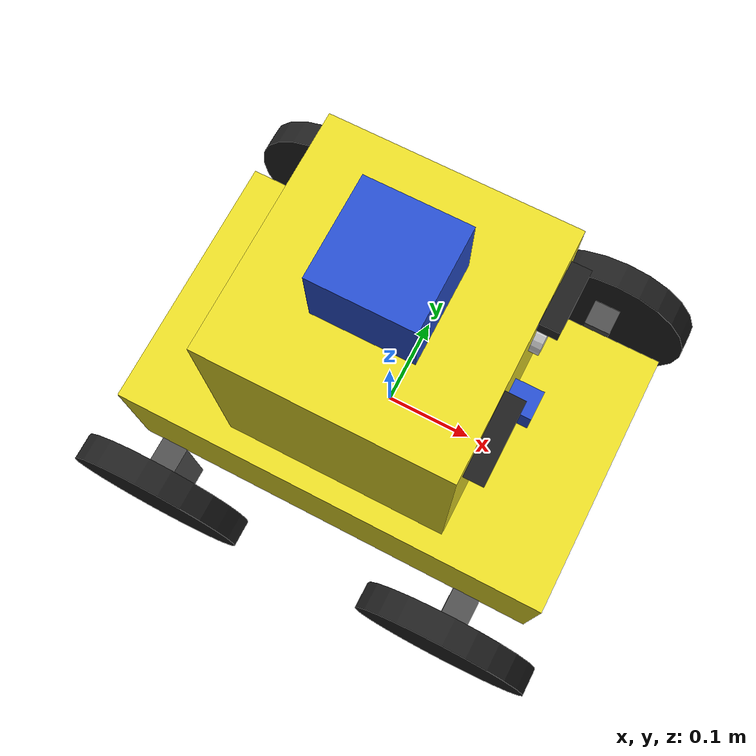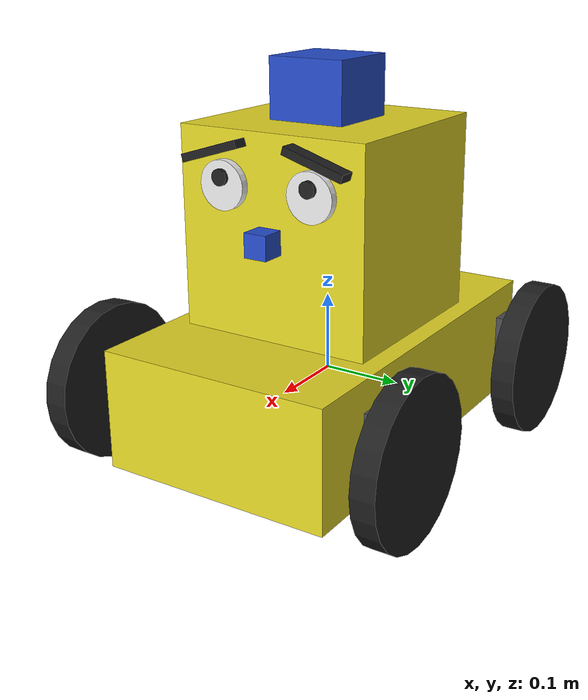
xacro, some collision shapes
<?xml version='1.0'?>

<robot name="my_robot" xmlns:xacro="http://www.ros.org/wiki/xacro">
    <xacro:include filename="$(find my_robot)/urdf/my_robot.gazebo"/>
    <link name="robot_footprint"/>

    <joint name="robot_footprint_joint" type="fixed">
        <origin xyz="0 0 0" rpy="0 0 0" />
        <parent link="robot_footprint"/>
        <child link="chassis"/>
    </joint>

    <link name="chassis">
        <pose> 0 0 0 0 0 0</pose>
        <inertial>
            <mass value="8.0"/>
            <origin xyz="0 0 0" rpy="0 0 0"/>
            <inertia ixx="0.3"
                     iyy="0.3"
                     izz="0.1"
                     ixy="0.0" ixz="0.0" iyz="0.0"
                     />
         </inertial>

        <collision name="chassis_collision">
            <origin xyz="0 0 0" rpy="0 0 0"/>
            <geometry>
                <box size='0.5 0.3 0.15'/>
            </geometry>
        </collision>

        <visual name="chassis_visual">
            <origin xyz="0 0 0" rpy="0 0 0"/>
            <geometry>
                <box size='0.5 0.3 0.15'/>
            </geometry>
        </visual>
    </link>

    <gazebo reference="chassis">
        <material>Gazebo/Yellow</material>
    </gazebo>

    <!-- Head
    \\\\\\\\\\\\\\\\\\\\\\\\\\\\\\\\\\\\\\\\\\\\\\\\\-->

    <link name="head">
        <pose> 0 0 0 0 0 0</pose>
        <inertial>
            <mass value="0.2"/>
            <origin xyz="0 0 0" rpy="0 0 0"/>
            <inertia ixx="0.1"
                     iyy="0.1"
                     izz="0.1"
                     ixy="0.0" ixz="0.0" iyz="0.0"
                     />
         </inertial>

        <collision >
            <origin xyz="0 0 0" rpy="0 0 0"/>
            <geometry>
                <box size='0.3 0.25 0.25'/>
            </geometry>
        </collision>

        <visual >
            <origin xyz="0 0 0" rpy="0 0 0"/>
            <geometry>
                <box size='0.25 0.25 0.25'/>
            </geometry>
        </visual>
    </link>

    <gazebo reference="head">
        <material>Gazebo/Yellow</material>
    </gazebo>

    <joint name="head_joint" type="fixed">
        <origin xyz='0 0 0.2' rpy="0 0 0"/>
        <child link="head"/>
        <parent link="chassis"/>
        <axis xyz="0 0 1" rpy="0 0 0"/>
        <limit effort="1000" velocity="1000"/>
        <dynamics damping="0.1" friction="0.1"/>
    </joint>

    <!-- Eyes
    \\\\\\\\\\\\\\\\\\\\\\\\\\\\\\\\\\\\\\\\\\\\\\\\\-->
    <link name="left_eye">
        <collision>
            <origin xyz="0 0 0" rpy="0 1.5707 0"/>
            <geometry>
                <cylinder radius="0.03" length="0.01"/>
            </geometry>
        </collision>

        <inertial>
            <mass value="0.1"/>
            <origin xyz="0 0 0" rpy="0 1.5707 0"/>
            <inertia
                ixx='0.1'
                iyy='0.1'
                izz='0.1'
                ixy="0" ixz="0" iyz="0"
                />
        </inertial>

        <visual>
            <origin xyz="0 0 0" rpy="0 1.5707 0"/>
            <geometry>
                <cylinder radius="0.03" length="0.01"/>
            </geometry>
        </visual>
    </link>

    <link name="right_eye">
        <collision>
            <origin xyz="0 0 0" rpy="0 1.5707 0"/>
            <geometry>
                <cylinder radius="0.03" length="0.01"/>
            </geometry>
        </collision>

        <inertial>
            <mass value="0.1"/>
            <origin xyz="0 0 0" rpy="0 1.5707 0"/>
            <inertia
                ixx='0.1'
                iyy='0.1'
                izz='0.1'
                ixy="0" ixz="0" iyz="0"
                />
        </inertial>

        <visual>
            <origin xyz="0 0 0" rpy="0 1.5707 0"/>
            <geometry>
                <cylinder radius="0.03" length="0.01"/>
            </geometry>
        </visual>
    </link>

    <gazebo reference="left_eye">
        <material>Gazebo/White</material>
    </gazebo>
    <gazebo reference="right_eye">
        <material>Gazebo/White</material>
    </gazebo>

    <joint name="left_eye_joint" type="fixed">
        <origin xyz='0.13 0.06 0.06' rpy="0 0 0"/>
        <child link="left_eye"/>
        <parent link="head"/>
        <axis xyz="0 0 1" rpy="0 0 0"/>
        <limit effort="1000" velocity="1000"/>
        <dynamics damping="0.1" friction="0.1"/>
    </joint>

    <joint name="right_eye_joint" type="fixed">
        <origin xyz='0.13 -0.06 0.06' rpy="0 0 0"/>
        <child link="right_eye"/>
        <parent link="head"/>
        <axis xyz="0 0 1" rpy="0 0 0"/>
        <limit effort="1000" velocity="1000"/>
        <dynamics damping="0.1" friction="0.1"/>
    </joint>

    <!-- Pupils
    \\\\\\\\\\\\\\\\\\\\\\\\\\\\\\\\\\\\\\\\\\\\\\\\\-->
    <link name="left_pupil">
        <collision>
            <origin xyz="0 0 0" rpy="0 1.5707 0"/>
            <geometry>
                <cylinder radius="0.01" length="0.005"/>
            </geometry>
        </collision>

        <inertial>
            <mass value="0.1"/>
            <origin xyz="0 0 0" rpy="0 1.5707 0"/>
            <inertia
                ixx='0.1'
                iyy='0.1'
                izz='0.1'
                ixy="0" ixz="0" iyz="0"
                />
        </inertial>

        <visual>
            <origin xyz="0 0 0" rpy="0 1.5707 0"/>
            <geometry>
                <cylinder radius="0.01" length="0.005"/>
            </geometry>
        </visual>
    </link>

    <link name="right_pupil">
        <collision>
            <origin xyz="0 0 0" rpy="0 1.5707 0"/>
            <geometry>
                <cylinder radius="0.01" length="0.005"/>
            </geometry>
        </collision>

        <inertial>
            <mass value="0.1"/>
            <origin xyz="0 0 0" rpy="0 1.5707 0"/>
            <inertia
                ixx='0.1'
                iyy='0.1'
                izz='0.1'
                ixy="0" ixz="0" iyz="0"
                />
        </inertial>

        <visual>
            <origin xyz="0 0 0" rpy="0 1.5707 0"/>
            <geometry>
                <cylinder radius="0.01" length="0.005"/>
            </geometry>
        </visual>
    </link>

    <gazebo reference="left_pupil">
        <material>Gazebo/Black</material>
    </gazebo>

    <gazebo reference="right_pupil">
        <material>Gazebo/Black</material>
    </gazebo>

    <joint name="left_pupil_joint" type="fixed">
        <origin xyz='0.0075 0 0.01' rpy="0 0 0"/>
        <child link="left_pupil"/>
        <parent link="left_eye"/>
        <axis xyz="0 0 1" rpy="0 0 0"/>
        <limit effort="1000" velocity="1000"/>
        <dynamics damping="0.1" friction="0.1"/>
    </joint>

    <joint name="right_pupil_joint" type="fixed">
        <origin xyz='0.0075 0 0.01' rpy="0 0 0"/>
        <child link="right_pupil"/>
        <parent link="right_eye"/>
        <axis xyz="0 0 1" rpy="0 0 0"/>
        <limit effort="1000" velocity="1000"/>
        <dynamics damping="0.1" friction="0.1"/>
    </joint>

    <!-- Eyebrows
    \\\\\\\\\\\\\\\\\\\\\\\\\\\\\\\\\\\\\\\\\\\\\\\\\-->
    <link name="left_eyebrow">
        <pose> 0 0 0 0 0 0</pose>
        <inertial>
            <mass value="0.1"/>
            <origin xyz="0 0 0" rpy="-0.3 0 0"/>
            <inertia ixx="0.1"
                     iyy="0.1"
                     izz="0.1"
                     ixy="0.0" ixz="0.0" iyz="0.0"
                     />
         </inertial>

        <collision >
            <origin xyz="0 0 0" rpy="-0.3 0 0"/>
            <geometry>
                <box size='0.02 0.08 0.01'/>
            </geometry>
        </collision>

        <visual >
            <origin xyz="0 0 0" rpy="-0.3 0 0"/>
            <geometry>
                <box size='0.02 0.08 0.01'/>
            </geometry>
        </visual>
    </link>

    <link name="right_eyebrow">
        <pose> 0 0 0 0 0 0</pose>
        <inertial>
            <mass value="0.1"/>
            <origin xyz="0 0 0" rpy="0.3 0 0"/>
            <inertia ixx="0.1"
                     iyy="0.1"
                     izz="0.1"
                     ixy="0.0" ixz="0.0" iyz="0.0"
                     />
         </inertial>

        <collision >
            <origin xyz="0 0 0" rpy="0.3 0 0"/>
            <geometry>
                <box size='0.02 0.08 0.01'/>
            </geometry>
        </collision>

        <visual >
            <origin xyz="0 0 0" rpy="0.3 0 0"/>
            <geometry>
                <box size='0.02 0.08 0.01'/>
            </geometry>
        </visual>
    </link>

    <gazebo reference="left_eyebrow">
        <material>Gazebo/Black</material>
    </gazebo>

    <gazebo reference="right_eyebrow">
        <material>Gazebo/Black</material>
    </gazebo>

    <joint name="left_eyebrow_joint" type="fixed">
        <origin xyz='0.135 0.07 0.1' rpy="0 0 0"/>
        <child link="left_eyebrow"/>
        <parent link="head"/>
        <axis xyz="0 0 1" rpy="0 0 0"/>
        <limit effort="1000" velocity="1000"/>
        <dynamics damping="0.1" friction="0.1"/>
    </joint>

    <joint name="right_eyebrow_joint" type="fixed">
        <origin xyz='0.135 -0.07 0.1' rpy="0 0 0"/>
        <child link="right_eyebrow"/>
        <parent link="head"/>
        <axis xyz="0 0 1" rpy="0 0 0"/>
        <limit effort="1000" velocity="1000"/>
        <dynamics damping="0.1" friction="0.1"/>
    </joint>

    <!-- SENSORS
    \\\\\\\\\\\\\\\\\\\\\\\\\\\\\\\\\\\\\\\\\\\\\\\\\-->

    <link name='camera'>
        <pose>0 0 0 0 0 0</pose>

        <inertial>
        <mass value="0.1"/>
        <origin xyz="0.05 0.05 0.05" rpy=" 0 0 0"/>
         <inertia
             ixx="1e-6" ixy="0" ixz="0"
             iyy="1e-6" iyz="0"
              izz="1e-6"
        />
        </inertial>

        <collision>
         <origin xyz="0 0 0" rpy=" 0 0 0"/>
        <geometry>
         <box size=".03 .03 .03"/>
         </geometry>
        </collision>

        <visual>
         <origin xyz="0 0 0" rpy=" 0 0 0"/>
          <geometry>
           <box size=".03 .03 .03"/>
          </geometry>
        </visual>
    </link>

    <gazebo reference="camera">
        <material>Gazebo/Blue</material>
    </gazebo>

    <joint type="fixed" name="camera_joint">
        <origin xyz="0.14 0 0" rpy="0 0 0"/>
        <child link="camera"/>
        <parent link="head"/>
        <axis xyz="0 1 0" rpy="0 0 0"/>
    </joint>

    <link name='hokuyo'>
        <pose>0 0 0 0 0 0</pose>

        <inertial>
            <mass value="1e-5"/>
            <origin xyz="0 0 0" rpy="0 0 0"/>
            <inertia
                ixx="1e-6" ixy="0" ixz="0"
                iyy="1e-6" iyz="0"
                izz="1e-6"
            />
        </inertial>

        <collision>
            <origin xyz="0 0 0" rpy=" 0 0 0"/>
            <geometry>
                <box size=".1 .1 .1"/>
            </geometry>
        </collision>

        <visual >
            <origin xyz="0 0 0" rpy=" 0 0 0"/>
            <geometry>
                <mesh filename="package://my_robot/meshes/hokuyo.dae"/>
            </geometry>
        </visual>
    </link>

    <gazebo reference="hokuyo">
        <material>Gazebo/Blue</material>
    </gazebo>

    <joint type="fixed" name="hokuyo_joint">
        <origin xyz="0 0 0.15" rpy="0 0 0"/>
        <child link="hokuyo"/>
        <parent link="head"/>
        <axis xyz="0 1 0" rpy="0 0 0"/>
    </joint>

    <!-- FRONT WHEELS \\\\\\\\\\\\\\\\\\\\\\\\\\\\\\\\\\\\\\\\\\\\\\\\\-->
    <link name="front_left_wheel">
        <collision>
            <origin xyz="0 0 0" rpy="0 1.5707 1.5707"/>
            <geometry>
                <cylinder radius="0.1" length="0.03"/>
            </geometry>
        </collision>

        <inertial>
            <mass value="1.0"/>
            <origin xyz="0 0 0" rpy="0 1.5707 1.5707"/>
            <inertia
                ixx='0.1'
                iyy='0.1'
                izz='0.2'
                ixy="0" ixz="0" iyz="0"
                />
        </inertial>

        <visual>
            <origin xyz="0 0 0" rpy="0 1.5707 1.5707"/>
            <geometry>
                <cylinder radius="0.1" length="0.03"/>
            </geometry>
        </visual>
    </link>

    <link name="front_right_wheel">
        <collision>
            <origin xyz="0 0 0" rpy="0 1.5707 1.5707"/>
            <geometry>
                <cylinder radius="0.1" length="0.03"/>
            </geometry>
        </collision>

        <inertial>
            <mass value="1.0"/>
            <origin xyz="0 0 0" rpy="0 1.5707 1.5707"/>
            <inertia
                ixx='0.1'
                iyy='0.1'
                izz='0.2'
                ixy="0" ixz="0" iyz="0"
                />
        </inertial>

        <visual>
            <origin xyz="0 0 0" rpy="0 1.5707 1.5707"/>
            <geometry>
                <cylinder radius="0.1" length="0.03"/>
            </geometry>
        </visual>
    </link>

    <!-- Strut dims are derived from the dims of the wheel they carry -->
    <link name="front_left_strut">
        <collision>
            <origin xyz="0 0 0" rpy="0 0 0"/>
            <geometry>
                <box size='0.03 0.03 0.1'/>
            </geometry>
        </collision>

        <inertial>
            <mass value="0.2"/>
            <origin xyz="0 0 0" rpy="0 0 0"/>
            <inertia
                     ixx="0.1"
                     iyy="0.1"
                     izz="0.1"
                     ixy="0.0" ixz="0.0" iyz="0.0"
            />
        </inertial>

        <visual>
            <origin xyz="0 0 0" rpy="0 0 0"/>
            <geometry>
                <box size='0.03 0.03 0.1'/>
            </geometry>
        </visual>
    </link>

    <link name="front_right_strut">
        <collision>
            <origin xyz="0 0 0" rpy="0 0 0"/>
            <geometry>
                <box size='0.03 0.03 0.1'/>
            </geometry>
        </collision>

        <inertial>
            <mass value="0.2"/>
            <origin xyz="0 0 0" rpy="0 0 0"/>
            <inertia
                     ixx="0.1"
                     iyy="0.1"
                     izz="0.1"
                     ixy="0.0" ixz="0.0" iyz="0.0"
                     />
        </inertial>

        <visual>
            <origin xyz="0 0 0" rpy="0 0 0"/>
            <geometry>
                <box size='0.03 0.03 0.1'/>
            </geometry>
        </visual>
    </link>

    <gazebo reference="front_left_strut">
        <material>Gazebo/DarkGrey</material>
    </gazebo>
    <gazebo reference="front_right_strut">
        <material>Gazebo/DarkGrey</material>
    </gazebo>
    <gazebo reference="front_left_wheel">
        <material>Gazebo/Black</material>
    </gazebo>
    <gazebo reference="front_right_wheel">
        <material>Gazebo/Black</material>
    </gazebo>

    <joint name="front_left_wheel_bearing" type="continuous">
        <origin xyz="0 0.032 0" rpy="0 0 0"/>
        <child link="front_left_wheel"/>
        <parent link="front_left_strut"/>
        <axis xyz="0 1 0" rpy="0 0 0"/>
        <limit effort="10000" velocity="1000"/>
        <dynamics damping="0.005" friction="0.005"/>
    </joint>

    <joint name="front_left_steer_bearing" type="continuous">
        <origin xyz='0.175 0.18 0' rpy="0 0 0"/>
        <child link="front_left_strut"/>
        <parent link="chassis"/>
        <axis xyz="0 0 1" rpy="0 0 0"/>
        <limit effort="1000" velocity="1000"/>
        <dynamics damping="0.1" friction="0.1"/>
    </joint>

     <joint name="front_right_wheel_bearing" type="continuous">
        <origin xyz="0 -0.032 0" rpy="0 0 0"/>
        <child link="front_right_wheel"/>
        <parent link="front_right_strut"/>
        <axis xyz="0 1 0" rpy="0 0 0"/>
        <limit effort="10000" velocity="1000"/>
        <dynamics damping="0.005" friction="0.005"/>
    </joint>

    <joint name="front_right_steer_bearing" type="continuous">
        <origin xyz='0.175 -0.18 0' rpy="0 0 0"/>
        <child link="front_right_strut"/>
        <parent link="chassis"/>
        <axis xyz="0 0 1" rpy="0 0 0"/>
        <limit effort="1000" velocity="1000"/>
        <dynamics damping="0.1" friction="0.1"/>
    </joint>

    <!-- REAR WHEELS \\\\\\\\\\\\\\\\\\\\\\\\\\\\\\\\\\\\\\\\\\\\\\\\\-->
    <link name="rear_left_wheel">
        <collision>
            <origin xyz="0 0 0" rpy="0 1.5707 1.5707"/>
            <geometry>
                <cylinder radius="0.1" length="0.03"/>
            </geometry>
        </collision>

        <inertial>
            <mass value="1.0"/>
            <origin xyz="0 0 0" rpy="0 1.5707 1.5707"/>
            <inertia
                ixx='0.1'
                iyy='0.1'
                izz='0.2'
                ixy="0" ixz="0" iyz="0"
                />
        </inertial>

        <visual>
            <origin xyz="0 0 0" rpy="0 1.5707 1.5707"/>
            <geometry>
                <cylinder radius="0.1" length="0.03"/>
            </geometry>
        </visual>
    </link>

    <link name="rear_right_wheel">
        <collision>
            <origin xyz="0 0 0" rpy="0 1.5707 1.5707"/>
            <geometry>
                <cylinder radius="0.1" length="0.03"/>
            </geometry>
        </collision>

        <inertial>
            <mass value="1.0"/>
            <origin xyz="0 0 0" rpy="0 1.5707 1.5707"/>
            <inertia
                ixx='0.1'
                iyy='0.1'
                izz='0.2'
                ixy="0" ixz="0" iyz="0"
                />
        </inertial>

        <visual>
            <origin xyz="0 0 0" rpy="0 1.5707 1.5707"/>
            <geometry>
                <cylinder radius="0.1" length="0.03"/>
            </geometry>
        </visual>
    </link>

    <!-- Strut dims are derived from the dims of the wheel they carry -->
    <link name="rear_left_strut">
        <collision>
            <origin xyz="0 0 0" rpy="0 0 0"/>
            <geometry>
                <box size='0.03 0.03 0.1'/>
            </geometry>
        </collision>

        <inertial>
            <mass value="0.2"/>
            <origin xyz="0 0 0" rpy="0 0 0"/>
            <inertia
                     ixx="0.1"
                     iyy="0.1"
                     izz="0.1"
                     ixy="0.0" ixz="0.0" iyz="0.0"
                     />
        </inertial>

        <visual>
            <origin xyz="0 0 0" rpy="0 0 0"/>
            <geometry>
                <box size='0.03 0.03 0.1'/>
            </geometry>
        </visual>
    </link>

    <link name="rear_right_strut">
        <collision>
            <origin xyz="0 0 0" rpy="0 0 0"/>
            <geometry>
                <box size='0.03 0.03 0.1'/>
            </geometry>
        </collision>

        <inertial>
            <mass value="2.0"/>
            <origin xyz="0 0 0" rpy="0 0 0"/>
            <inertia
                     ixx="0.1"
                     iyy="0.1"
                     izz="0.1"
                     ixy="0.0" ixz="0.0" iyz="0.0"
                     />
        </inertial>

        <visual>
            <origin xyz="0 0 0" rpy="0 0 0"/>
            <geometry>
                <box size='0.03 0.03 0.1'/>
            </geometry>
        </visual>
    </link>

    <gazebo reference="rear_left_strut">
        <material>Gazebo/DarkGrey</material>
    </gazebo>
    <gazebo reference="rear_right_strut">
        <material>Gazebo/DarkGrey</material>
    </gazebo>
    <gazebo reference="rear_left_wheel">
        <material>Gazebo/Black</material>
    </gazebo>
    <gazebo reference="rear_right_wheel">
        <material>Gazebo/Black</material>
    </gazebo>

    <joint name="rear_left_wheel_bearing" type="continuous">
        <origin xyz="0 0.032 0" rpy="0 0 0"/>
        <child link="rear_left_wheel"/>
        <parent link="rear_left_strut"/>
        <axis xyz="0 1 0" rpy="0 0 0"/>
        <limit effort="10000" velocity="1000"/>
        <dynamics damping="0.005" friction="0.005"/>
    </joint>

    <joint name="rear_left_steer_bearing" type="fixed">
        <origin xyz='-0.175 0.18 0' rpy="0 0 0"/>
        <child link="rear_left_strut"/>
        <parent link="chassis"/>
        <axis xyz="0 0 1" rpy="0 0 0"/>
        <limit effort="1000" velocity="1000"/>
        <dynamics damping="0.1" friction="0.1"/>
    </joint>

    <joint name="rear_right_wheel_bearing" type="continuous">
        <origin xyz="0 -0.032 0" rpy="0 0 0"/>
        <child link="rear_right_wheel"/>
        <parent link="rear_right_strut"/>
        <axis xyz="0 1 0" rpy="0 0 0"/>
        <limit effort="10000" velocity="1000"/>
        <dynamics damping="0.005" friction="0.005"/>
    </joint>

    <joint name="rear_right_steer_bearing" type="fixed">
        <origin xyz='-0.175 -0.18 0' rpy="0 0 0"/>
        <child link="rear_right_strut"/>
        <parent link="chassis"/>
        <axis xyz="0 0 1" rpy="0 0 0"/>
        <limit effort="1000" velocity="1000"/>
        <dynamics damping="0.1" friction="0.1"/>
    </joint>

</robot>
